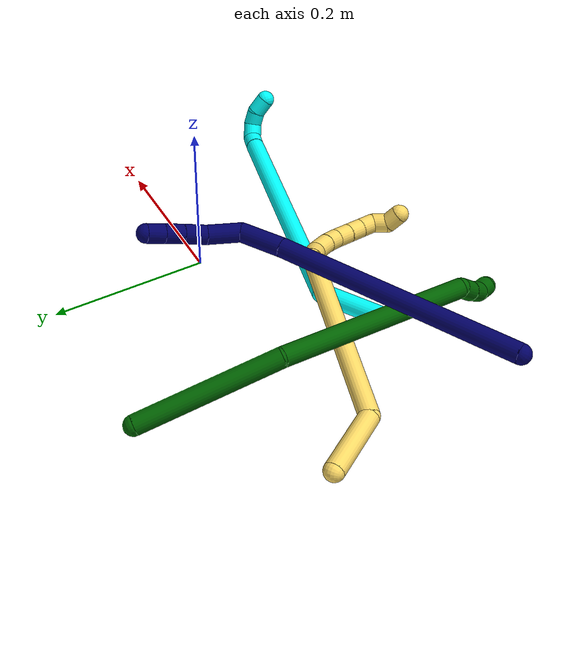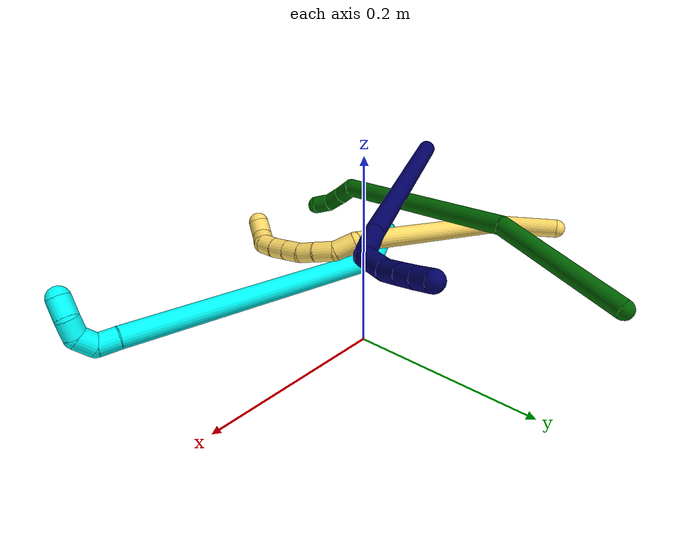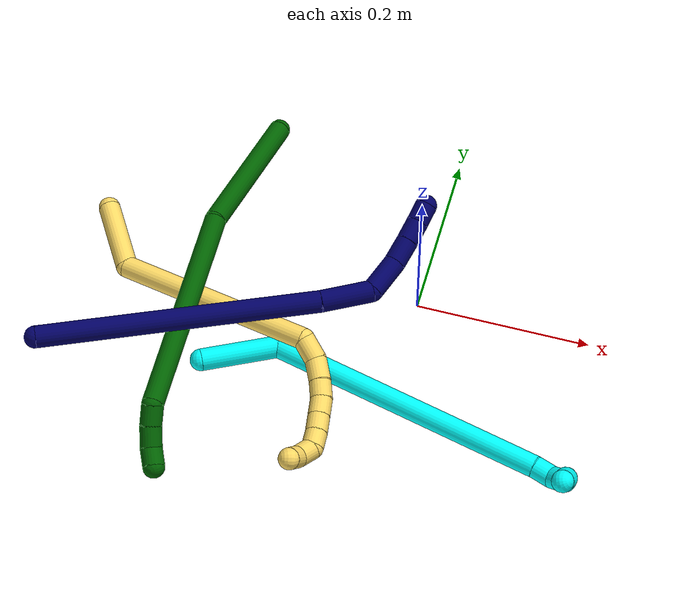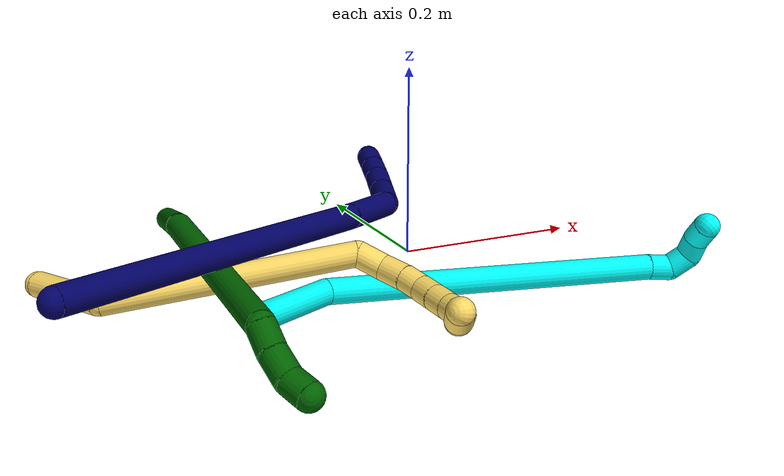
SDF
<sdf version="1.7">
 <world name="default">
  <model name="3">
   <static>0</static>
   <link name="3">
    <collision name="collision-cylinder-e_1_1_4">
     <pose>0.007689 -0.031935 -0.03007 2.32613 0.173532 0.397446</pose>
     <geometry><cylinder><radius>0.0125</radius><length>0.089067</length></cylinder></geometry>
     <surface>
      <friction><ode><mu>1.16</mu><mu2>1.16</mu2><slip1>0</slip1><slip2>0</slip2></ode></friction>
      <contact><ode><kp>1e+06</kp><kd>1</kd><max_vel>0</max_vel><min_depth>0.001</min_depth></ode></contact>
     </surface>
    </collision>
    <visual name="visual-cylinder-e_1_1_4">
     <pose>0.007689 -0.031935 -0.03007 2.32613 0.173532 0.397446</pose>
     <geometry><cylinder><radius>0.0125</radius><length>0.089067</length></cylinder></geometry>
     <material><ambient>0.003922 1 0.996078 1</ambient></material>
    </visual>
    <collision name="collision-cylinder-e_2_4_5">
     <pose>0.112898 -0.088301 -0.186795 2.95105 0.647348 2.58657</pose>
     <geometry><cylinder><radius>0.0125</radius><length>0.323408</length></cylinder></geometry>
     <surface>
      <friction><ode><mu>1.16</mu><mu2>1.16</mu2><slip1>0</slip1><slip2>0</slip2></ode></friction>
      <contact><ode><kp>1e+06</kp><kd>1</kd><max_vel>0</max_vel><min_depth>0.001</min_depth></ode></contact>
     </surface>
    </collision>
    <visual name="visual-cylinder-e_2_4_5">
     <pose>0.112898 -0.088301 -0.186795 2.95105 0.647348 2.58657</pose>
     <geometry><cylinder><radius>0.0125</radius><length>0.323408</length></cylinder></geometry>
     <material><ambient>0.003922 1 0.996078 1</ambient></material>
    </visual>
    <collision name="collision-cylinder-e_3_5_6">
     <pose>0.218166 -0.114174 -0.32156 2.96555 0.754846 2.70352</pose>
     <geometry><cylinder><radius>0.0125</radius><length>0.02262</length></cylinder></geometry>
     <surface>
      <friction><ode><mu>1.16</mu><mu2>1.16</mu2><slip1>0</slip1><slip2>0</slip2></ode></friction>
      <contact><ode><kp>1e+06</kp><kd>1</kd><max_vel>0</max_vel><min_depth>0.001</min_depth></ode></contact>
     </surface>
    </collision>
    <visual name="visual-cylinder-e_3_5_6">
     <pose>0.218166 -0.114174 -0.32156 2.96555 0.754846 2.70352</pose>
     <geometry><cylinder><radius>0.0125</radius><length>0.02262</length></cylinder></geometry>
     <material><ambient>0.003922 1 0.996078 1</ambient></material>
    </visual>
    <collision name="collision-cylinder-e_4_6_7">
     <pose>0.227655 -0.11156 -0.339678 -2.75651 0.159686 -0.778902</pose>
     <geometry><cylinder><radius>0.0125</radius><length>0.021874</length></cylinder></geometry>
     <surface>
      <friction><ode><mu>1.16</mu><mu2>1.16</mu2><slip1>0</slip1><slip2>0</slip2></ode></friction>
      <contact><ode><kp>1e+06</kp><kd>1</kd><max_vel>0</max_vel><min_depth>0.001</min_depth></ode></contact>
     </surface>
    </collision>
    <visual name="visual-cylinder-e_4_6_7">
     <pose>0.227655 -0.11156 -0.339678 -2.75651 0.159686 -0.778902</pose>
     <geometry><cylinder><radius>0.0125</radius><length>0.021874</length></cylinder></geometry>
     <material><ambient>0.003922 1 0.996078 1</ambient></material>
    </visual>
    <collision name="collision-cylinder-e_5_7_8">
     <pose>0.225791 -0.100528 -0.35603 -2.30889 -0.364843 0.79043</pose>
     <geometry><cylinder><radius>0.0125</radius><length>0.020191</length></cylinder></geometry>
     <surface>
      <friction><ode><mu>1.16</mu><mu2>1.16</mu2><slip1>0</slip1><slip2>0</slip2></ode></friction>
      <contact><ode><kp>1e+06</kp><kd>1</kd><max_vel>0</max_vel><min_depth>0.001</min_depth></ode></contact>
     </surface>
    </collision>
    <visual name="visual-cylinder-e_5_7_8">
     <pose>0.225791 -0.100528 -0.35603 -2.30889 -0.364843 0.79043</pose>
     <geometry><cylinder><radius>0.0125</radius><length>0.020191</length></cylinder></geometry>
     <material><ambient>0.003922 1 0.996078 1</ambient></material>
    </visual>
    <collision name="collision-cylinder-e_6_8_2">
     <pose>0.220301 -0.083241 -0.366911 -1.98512 -0.166092 0.253704</pose>
     <geometry><cylinder><radius>0.0125</radius><length>0.022841</length></cylinder></geometry>
     <surface>
      <friction><ode><mu>1.16</mu><mu2>1.16</mu2><slip1>0</slip1><slip2>0</slip2></ode></friction>
      <contact><ode><kp>1e+06</kp><kd>1</kd><max_vel>0</max_vel><min_depth>0.001</min_depth></ode></contact>
     </surface>
    </collision>
    <visual name="visual-cylinder-e_6_8_2">
     <pose>0.220301 -0.083241 -0.366911 -1.98512 -0.166092 0.253704</pose>
     <geometry><cylinder><radius>0.0125</radius><length>0.022841</length></cylinder></geometry>
     <material><ambient>0.003922 1 0.996078 1</ambient></material>
    </visual>
    <collision name="collision-sphere-2">
     <pose>0.218413 -0.07293 -0.371445 0 -0 0</pose>
     <geometry><sphere><radius>0.0125</radius></sphere></geometry>
     <surface>
      <friction><ode><mu>1.16</mu><mu2>1.16</mu2><slip1>0</slip1><slip2>0</slip2></ode></friction>
      <contact><ode><kp>1e+06</kp><kd>1</kd><max_vel>0</max_vel><min_depth>0.001</min_depth></ode></contact>
     </surface>
    </collision>
    <visual name="visual-sphere-2">
     <pose>0.218413 -0.07293 -0.371445 0 -0 0</pose>
     <geometry><sphere><radius>0.0125</radius></sphere></geometry>
     <material><ambient>0.003922 1 0.996078 1</ambient></material>
    </visual>
    <collision name="collision-sphere-4">
     <pose>0.015378 -0.063871 -0.060141 0 -0 0</pose>
     <geometry><sphere><radius>0.0125</radius></sphere></geometry>
     <surface>
      <friction><ode><mu>1.16</mu><mu2>1.16</mu2><slip1>0</slip1><slip2>0</slip2></ode></friction>
      <contact><ode><kp>1e+06</kp><kd>1</kd><max_vel>0</max_vel><min_depth>0.001</min_depth></ode></contact>
     </surface>
    </collision>
    <visual name="visual-sphere-4">
     <pose>0.015378 -0.063871 -0.060141 0 -0 0</pose>
     <geometry><sphere><radius>0.0125</radius></sphere></geometry>
     <material><ambient>0.003922 1 0.996078 1</ambient></material>
    </visual>
    <collision name="collision-sphere-1">
     <geometry><sphere><radius>0.0125</radius></sphere></geometry>
     <surface>
      <friction><ode><mu>1.16</mu><mu2>1.16</mu2><slip1>0</slip1><slip2>0</slip2></ode></friction>
      <contact><ode><kp>1e+06</kp><kd>1</kd><max_vel>0</max_vel><min_depth>0.001</min_depth></ode></contact>
     </surface>
    </collision>
    <visual name="visual-sphere-1">
     <geometry><sphere><radius>0.0125</radius></sphere></geometry>
     <material><ambient>0.003922 1 0.996078 1</ambient></material>
    </visual>
    <collision name="collision-sphere-8">
     <pose>0.222189 -0.093551 -0.362376 0 -0 0</pose>
     <geometry><sphere><radius>0.0125</radius></sphere></geometry>
     <surface>
      <friction><ode><mu>1.16</mu><mu2>1.16</mu2><slip1>0</slip1><slip2>0</slip2></ode></friction>
      <contact><ode><kp>1e+06</kp><kd>1</kd><max_vel>0</max_vel><min_depth>0.001</min_depth></ode></contact>
     </surface>
    </collision>
    <visual name="visual-sphere-8">
     <pose>0.222189 -0.093551 -0.362376 0 -0 0</pose>
     <geometry><sphere><radius>0.0125</radius></sphere></geometry>
     <material><ambient>0.003922 1 0.996078 1</ambient></material>
    </visual>
    <collision name="collision-sphere-5">
     <pose>0.210417 -0.112731 -0.313449 0 -0 0</pose>
     <geometry><sphere><radius>0.0125</radius></sphere></geometry>
     <surface>
      <friction><ode><mu>1.16</mu><mu2>1.16</mu2><slip1>0</slip1><slip2>0</slip2></ode></friction>
      <contact><ode><kp>1e+06</kp><kd>1</kd><max_vel>0</max_vel><min_depth>0.001</min_depth></ode></contact>
     </surface>
    </collision>
    <visual name="visual-sphere-5">
     <pose>0.210417 -0.112731 -0.313449 0 -0 0</pose>
     <geometry><sphere><radius>0.0125</radius></sphere></geometry>
     <material><ambient>0.003922 1 0.996078 1</ambient></material>
    </visual>
    <collision name="collision-sphere-6">
     <pose>0.225916 -0.115616 -0.329671 0 -0 0</pose>
     <geometry><sphere><radius>0.0125</radius></sphere></geometry>
     <surface>
      <friction><ode><mu>1.16</mu><mu2>1.16</mu2><slip1>0</slip1><slip2>0</slip2></ode></friction>
      <contact><ode><kp>1e+06</kp><kd>1</kd><max_vel>0</max_vel><min_depth>0.001</min_depth></ode></contact>
     </surface>
    </collision>
    <visual name="visual-sphere-6">
     <pose>0.225916 -0.115616 -0.329671 0 -0 0</pose>
     <geometry><sphere><radius>0.0125</radius></sphere></geometry>
     <material><ambient>0.003922 1 0.996078 1</ambient></material>
    </visual>
    <collision name="collision-sphere-7">
     <pose>0.229394 -0.107504 -0.349685 0 -0 0</pose>
     <geometry><sphere><radius>0.0125</radius></sphere></geometry>
     <surface>
      <friction><ode><mu>1.16</mu><mu2>1.16</mu2><slip1>0</slip1><slip2>0</slip2></ode></friction>
      <contact><ode><kp>1e+06</kp><kd>1</kd><max_vel>0</max_vel><min_depth>0.001</min_depth></ode></contact>
     </surface>
    </collision>
    <visual name="visual-sphere-7">
     <pose>0.229394 -0.107504 -0.349685 0 -0 0</pose>
     <geometry><sphere><radius>0.0125</radius></sphere></geometry>
     <material><ambient>0.003922 1 0.996078 1</ambient></material>
    </visual>
    <inertial>
     <pose>0.113404 -0.080711 -0.186724 0 -0 0</pose>
     <mass>0.5</mass>
     <inertia>
      <ixx>-0.000628</ixx>
      <ixy>0</ixy>
      <ixz>0</ixz>
      <iyy>0.003706</iyy>
      <iyz>0</iyz>
      <izz>-0.001279</izz>
     </inertia>
    </inertial>
   </link>
   <pose>-0.214287 -0.144157 0.01554 2.47558 0.707245 -0.883482</pose>
  </model>
  <model name="5">
   <static>0</static>
   <link name="5">
    <collision name="collision-cylinder-e_1_1_4">
     <pose>0.031659 -0.028203 -0.006794 1.80721 0.829047 1.01887</pose>
     <geometry><cylinder><radius>0.0125</radius><length>0.085881</length></cylinder></geometry>
     <surface>
      <friction><ode><mu>1.16</mu><mu2>1.16</mu2><slip1>0</slip1><slip2>0</slip2></ode></friction>
      <contact><ode><kp>1e+06</kp><kd>1</kd><max_vel>0</max_vel><min_depth>0.001</min_depth></ode></contact>
     </surface>
    </collision>
    <visual name="visual-cylinder-e_1_1_4">
     <pose>0.031659 -0.028203 -0.006794 1.80721 0.829047 1.01887</pose>
     <geometry><cylinder><radius>0.0125</radius><length>0.085881</length></cylinder></geometry>
     <material><ambient>1 0.858824 0.4 1</ambient></material>
    </visual>
    <collision name="collision-cylinder-e_2_4_5">
     <pose>0.139608 -0.079029 -0.102065 2.89126 0.695947 2.4738</pose>
     <geometry><cylinder><radius>0.0125</radius><length>0.23799</length></cylinder></geometry>
     <surface>
      <friction><ode><mu>1.16</mu><mu2>1.16</mu2><slip1>0</slip1><slip2>0</slip2></ode></friction>
      <contact><ode><kp>1e+06</kp><kd>1</kd><max_vel>0</max_vel><min_depth>0.001</min_depth></ode></contact>
     </surface>
    </collision>
    <visual name="visual-cylinder-e_2_4_5">
     <pose>0.139608 -0.079029 -0.102065 2.89126 0.695947 2.4738</pose>
     <geometry><cylinder><radius>0.0125</radius><length>0.23799</length></cylinder></geometry>
     <material><ambient>1 0.858824 0.4 1</ambient></material>
    </visual>
    <collision name="collision-cylinder-e_3_5_6">
     <pose>0.221064 -0.112373 -0.197268 2.13117 0.387562 0.681914</pose>
     <geometry><cylinder><radius>0.0125</radius><length>0.027341</length></cylinder></geometry>
     <surface>
      <friction><ode><mu>1.16</mu><mu2>1.16</mu2><slip1>0</slip1><slip2>0</slip2></ode></friction>
      <contact><ode><kp>1e+06</kp><kd>1</kd><max_vel>0</max_vel><min_depth>0.001</min_depth></ode></contact>
     </surface>
    </collision>
    <visual name="visual-cylinder-e_3_5_6">
     <pose>0.221064 -0.112373 -0.197268 2.13117 0.387562 0.681914</pose>
     <geometry><cylinder><radius>0.0125</radius><length>0.027341</length></cylinder></geometry>
     <material><ambient>1 0.858824 0.4 1</ambient></material>
    </visual>
    <collision name="collision-cylinder-e_4_6_7">
     <pose>0.234071 -0.133459 -0.205429 1.70827 0.643072 0.730399</pose>
     <geometry><cylinder><radius>0.0125</radius><length>0.026151</length></cylinder></geometry>
     <surface>
      <friction><ode><mu>1.16</mu><mu2>1.16</mu2><slip1>0</slip1><slip2>0</slip2></ode></friction>
      <contact><ode><kp>1e+06</kp><kd>1</kd><max_vel>0</max_vel><min_depth>0.001</min_depth></ode></contact>
     </surface>
    </collision>
    <visual name="visual-cylinder-e_4_6_7">
     <pose>0.234071 -0.133459 -0.205429 1.70827 0.643072 0.730399</pose>
     <geometry><cylinder><radius>0.0125</radius><length>0.026151</length></cylinder></geometry>
     <material><ambient>1 0.858824 0.4 1</ambient></material>
    </visual>
    <collision name="collision-cylinder-e_5_7_8">
     <pose>0.247444 -0.152476 -0.20705 1.59245 0.568774 0.580546</pose>
     <geometry><cylinder><radius>0.0125</radius><length>0.020542</length></cylinder></geometry>
     <surface>
      <friction><ode><mu>1.16</mu><mu2>1.16</mu2><slip1>0</slip1><slip2>0</slip2></ode></friction>
      <contact><ode><kp>1e+06</kp><kd>1</kd><max_vel>0</max_vel><min_depth>0.001</min_depth></ode></contact>
     </surface>
    </collision>
    <visual name="visual-cylinder-e_5_7_8">
     <pose>0.247444 -0.152476 -0.20705 1.59245 0.568774 0.580546</pose>
     <geometry><cylinder><radius>0.0125</radius><length>0.020542</length></cylinder></geometry>
     <material><ambient>1 0.858824 0.4 1</ambient></material>
    </visual>
    <collision name="collision-cylinder-e_6_8_9">
     <pose>0.259383 -0.169385 -0.204881 1.29278 0.641032 0.490846</pose>
     <geometry><cylinder><radius>0.0125</radius><length>0.021427</length></cylinder></geometry>
     <surface>
      <friction><ode><mu>1.16</mu><mu2>1.16</mu2><slip1>0</slip1><slip2>0</slip2></ode></friction>
      <contact><ode><kp>1e+06</kp><kd>1</kd><max_vel>0</max_vel><min_depth>0.001</min_depth></ode></contact>
     </surface>
    </collision>
    <visual name="visual-cylinder-e_6_8_9">
     <pose>0.259383 -0.169385 -0.204881 1.29278 0.641032 0.490846</pose>
     <geometry><cylinder><radius>0.0125</radius><length>0.021427</length></cylinder></geometry>
     <material><ambient>1 0.858824 0.4 1</ambient></material>
    </visual>
    <collision name="collision-cylinder-e_7_9_10">
     <pose>0.271949 -0.185586 -0.200256 1.29267 0.640659 0.4905</pose>
     <geometry><cylinder><radius>0.0125</radius><length>0.020609</length></cylinder></geometry>
     <surface>
      <friction><ode><mu>1.16</mu><mu2>1.16</mu2><slip1>0</slip1><slip2>0</slip2></ode></friction>
      <contact><ode><kp>1e+06</kp><kd>1</kd><max_vel>0</max_vel><min_depth>0.001</min_depth></ode></contact>
     </surface>
    </collision>
    <visual name="visual-cylinder-e_7_9_10">
     <pose>0.271949 -0.185586 -0.200256 1.29267 0.640659 0.4905</pose>
     <geometry><cylinder><radius>0.0125</radius><length>0.020609</length></cylinder></geometry>
     <material><ambient>1 0.858824 0.4 1</ambient></material>
    </visual>
    <collision name="collision-cylinder-e_8_10_11">
     <pose>0.284412 -0.200597 -0.194765 1.14296 0.68168 0.448492</pose>
     <geometry><cylinder><radius>0.0125</radius><length>0.020008</length></cylinder></geometry>
     <surface>
      <friction><ode><mu>1.16</mu><mu2>1.16</mu2><slip1>0</slip1><slip2>0</slip2></ode></friction>
      <contact><ode><kp>1e+06</kp><kd>1</kd><max_vel>0</max_vel><min_depth>0.001</min_depth></ode></contact>
     </surface>
    </collision>
    <visual name="visual-cylinder-e_8_10_11">
     <pose>0.284412 -0.200597 -0.194765 1.14296 0.68168 0.448492</pose>
     <geometry><cylinder><radius>0.0125</radius><length>0.020008</length></cylinder></geometry>
     <material><ambient>1 0.858824 0.4 1</ambient></material>
    </visual>
    <collision name="collision-cylinder-e_9_11_12">
     <pose>0.293834 -0.21184 -0.182994 0.454351 0.316844 0.073829</pose>
     <geometry><cylinder><radius>0.0125</radius><length>0.020022</length></cylinder></geometry>
     <surface>
      <friction><ode><mu>1.16</mu><mu2>1.16</mu2><slip1>0</slip1><slip2>0</slip2></ode></friction>
      <contact><ode><kp>1e+06</kp><kd>1</kd><max_vel>0</max_vel><min_depth>0.001</min_depth></ode></contact>
     </surface>
    </collision>
    <visual name="visual-cylinder-e_9_11_12">
     <pose>0.293834 -0.21184 -0.182994 0.454351 0.316844 0.073829</pose>
     <geometry><cylinder><radius>0.0125</radius><length>0.020022</length></cylinder></geometry>
     <material><ambient>1 0.858824 0.4 1</ambient></material>
    </visual>
    <collision name="collision-cylinder-e_10_12_2">
     <pose>0.304467 -0.21522 -0.167873 -0.120362 0.848436 -0.054413</pose>
     <geometry><cylinder><radius>0.0125</radius><length>0.020029</length></cylinder></geometry>
     <surface>
      <friction><ode><mu>1.16</mu><mu2>1.16</mu2><slip1>0</slip1><slip2>0</slip2></ode></friction>
      <contact><ode><kp>1e+06</kp><kd>1</kd><max_vel>0</max_vel><min_depth>0.001</min_depth></ode></contact>
     </surface>
    </collision>
    <visual name="visual-cylinder-e_10_12_2">
     <pose>0.304467 -0.21522 -0.167873 -0.120362 0.848436 -0.054413</pose>
     <geometry><cylinder><radius>0.0125</radius><length>0.020029</length></cylinder></geometry>
     <material><ambient>1 0.858824 0.4 1</ambient></material>
    </visual>
    <collision name="collision-sphere-2">
     <pose>0.31198 -0.214425 -0.1613 0 -0 0</pose>
     <geometry><sphere><radius>0.0125</radius></sphere></geometry>
     <surface>
      <friction><ode><mu>1.16</mu><mu2>1.16</mu2><slip1>0</slip1><slip2>0</slip2></ode></friction>
      <contact><ode><kp>1e+06</kp><kd>1</kd><max_vel>0</max_vel><min_depth>0.001</min_depth></ode></contact>
     </surface>
    </collision>
    <visual name="visual-sphere-2">
     <pose>0.31198 -0.214425 -0.1613 0 -0 0</pose>
     <geometry><sphere><radius>0.0125</radius></sphere></geometry>
     <material><ambient>1 0.858824 0.4 1</ambient></material>
    </visual>
    <collision name="collision-sphere-12">
     <pose>0.296953 -0.216015 -0.174447 0 -0 0</pose>
     <geometry><sphere><radius>0.0125</radius></sphere></geometry>
     <surface>
      <friction><ode><mu>1.16</mu><mu2>1.16</mu2><slip1>0</slip1><slip2>0</slip2></ode></friction>
      <contact><ode><kp>1e+06</kp><kd>1</kd><max_vel>0</max_vel><min_depth>0.001</min_depth></ode></contact>
     </surface>
    </collision>
    <visual name="visual-sphere-12">
     <pose>0.296953 -0.216015 -0.174447 0 -0 0</pose>
     <geometry><sphere><radius>0.0125</radius></sphere></geometry>
     <material><ambient>1 0.858824 0.4 1</ambient></material>
    </visual>
    <collision name="collision-sphere-11">
     <pose>0.290715 -0.207665 -0.191542 0 -0 0</pose>
     <geometry><sphere><radius>0.0125</radius></sphere></geometry>
     <surface>
      <friction><ode><mu>1.16</mu><mu2>1.16</mu2><slip1>0</slip1><slip2>0</slip2></ode></friction>
      <contact><ode><kp>1e+06</kp><kd>1</kd><max_vel>0</max_vel><min_depth>0.001</min_depth></ode></contact>
     </surface>
    </collision>
    <visual name="visual-sphere-11">
     <pose>0.290715 -0.207665 -0.191542 0 -0 0</pose>
     <geometry><sphere><radius>0.0125</radius></sphere></geometry>
     <material><ambient>1 0.858824 0.4 1</ambient></material>
    </visual>
    <collision name="collision-sphere-10">
     <pose>0.278108 -0.193529 -0.197988 0 -0 0</pose>
     <geometry><sphere><radius>0.0125</radius></sphere></geometry>
     <surface>
      <friction><ode><mu>1.16</mu><mu2>1.16</mu2><slip1>0</slip1><slip2>0</slip2></ode></friction>
      <contact><ode><kp>1e+06</kp><kd>1</kd><max_vel>0</max_vel><min_depth>0.001</min_depth></ode></contact>
     </surface>
    </collision>
    <visual name="visual-sphere-10">
     <pose>0.278108 -0.193529 -0.197988 0 -0 0</pose>
     <geometry><sphere><radius>0.0125</radius></sphere></geometry>
     <material><ambient>1 0.858824 0.4 1</ambient></material>
    </visual>
    <collision name="collision-sphere-9">
     <pose>0.26579 -0.177642 -0.202524 0 -0 0</pose>
     <geometry><sphere><radius>0.0125</radius></sphere></geometry>
     <surface>
      <friction><ode><mu>1.16</mu><mu2>1.16</mu2><slip1>0</slip1><slip2>0</slip2></ode></friction>
      <contact><ode><kp>1e+06</kp><kd>1</kd><max_vel>0</max_vel><min_depth>0.001</min_depth></ode></contact>
     </surface>
    </collision>
    <visual name="visual-sphere-9">
     <pose>0.26579 -0.177642 -0.202524 0 -0 0</pose>
     <geometry><sphere><radius>0.0125</radius></sphere></geometry>
     <material><ambient>1 0.858824 0.4 1</ambient></material>
    </visual>
    <collision name="collision-sphere-4">
     <pose>0.063319 -0.056405 -0.013589 0 -0 0</pose>
     <geometry><sphere><radius>0.0125</radius></sphere></geometry>
     <surface>
      <friction><ode><mu>1.16</mu><mu2>1.16</mu2><slip1>0</slip1><slip2>0</slip2></ode></friction>
      <contact><ode><kp>1e+06</kp><kd>1</kd><max_vel>0</max_vel><min_depth>0.001</min_depth></ode></contact>
     </surface>
    </collision>
    <visual name="visual-sphere-4">
     <pose>0.063319 -0.056405 -0.013589 0 -0 0</pose>
     <geometry><sphere><radius>0.0125</radius></sphere></geometry>
     <material><ambient>1 0.858824 0.4 1</ambient></material>
    </visual>
    <collision name="collision-sphere-1">
     <geometry><sphere><radius>0.0125</radius></sphere></geometry>
     <surface>
      <friction><ode><mu>1.16</mu><mu2>1.16</mu2><slip1>0</slip1><slip2>0</slip2></ode></friction>
      <contact><ode><kp>1e+06</kp><kd>1</kd><max_vel>0</max_vel><min_depth>0.001</min_depth></ode></contact>
     </surface>
    </collision>
    <visual name="visual-sphere-1">
     <geometry><sphere><radius>0.0125</radius></sphere></geometry>
     <material><ambient>1 0.858824 0.4 1</ambient></material>
    </visual>
    <collision name="collision-sphere-8">
     <pose>0.252976 -0.161128 -0.207237 0 -0 0</pose>
     <geometry><sphere><radius>0.0125</radius></sphere></geometry>
     <surface>
      <friction><ode><mu>1.16</mu><mu2>1.16</mu2><slip1>0</slip1><slip2>0</slip2></ode></friction>
      <contact><ode><kp>1e+06</kp><kd>1</kd><max_vel>0</max_vel><min_depth>0.001</min_depth></ode></contact>
     </surface>
    </collision>
    <visual name="visual-sphere-8">
     <pose>0.252976 -0.161128 -0.207237 0 -0 0</pose>
     <geometry><sphere><radius>0.0125</radius></sphere></geometry>
     <material><ambient>1 0.858824 0.4 1</ambient></material>
    </visual>
    <collision name="collision-sphere-5">
     <pose>0.215897 -0.101652 -0.190541 0 -0 0</pose>
     <geometry><sphere><radius>0.0125</radius></sphere></geometry>
     <surface>
      <friction><ode><mu>1.16</mu><mu2>1.16</mu2><slip1>0</slip1><slip2>0</slip2></ode></friction>
      <contact><ode><kp>1e+06</kp><kd>1</kd><max_vel>0</max_vel><min_depth>0.001</min_depth></ode></contact>
     </surface>
    </collision>
    <visual name="visual-sphere-5">
     <pose>0.215897 -0.101652 -0.190541 0 -0 0</pose>
     <geometry><sphere><radius>0.0125</radius></sphere></geometry>
     <material><ambient>1 0.858824 0.4 1</ambient></material>
    </visual>
    <collision name="collision-sphere-6">
     <pose>0.22623 -0.123094 -0.203995 0 -0 0</pose>
     <geometry><sphere><radius>0.0125</radius></sphere></geometry>
     <surface>
      <friction><ode><mu>1.16</mu><mu2>1.16</mu2><slip1>0</slip1><slip2>0</slip2></ode></friction>
      <contact><ode><kp>1e+06</kp><kd>1</kd><max_vel>0</max_vel><min_depth>0.001</min_depth></ode></contact>
     </surface>
    </collision>
    <visual name="visual-sphere-6">
     <pose>0.22623 -0.123094 -0.203995 0 -0 0</pose>
     <geometry><sphere><radius>0.0125</radius></sphere></geometry>
     <material><ambient>1 0.858824 0.4 1</ambient></material>
    </visual>
    <collision name="collision-sphere-7">
     <pose>0.241912 -0.143824 -0.206863 0 -0 0</pose>
     <geometry><sphere><radius>0.0125</radius></sphere></geometry>
     <surface>
      <friction><ode><mu>1.16</mu><mu2>1.16</mu2><slip1>0</slip1><slip2>0</slip2></ode></friction>
      <contact><ode><kp>1e+06</kp><kd>1</kd><max_vel>0</max_vel><min_depth>0.001</min_depth></ode></contact>
     </surface>
    </collision>
    <visual name="visual-sphere-7">
     <pose>0.241912 -0.143824 -0.206863 0 -0 0</pose>
     <geometry><sphere><radius>0.0125</radius></sphere></geometry>
     <material><ambient>1 0.858824 0.4 1</ambient></material>
    </visual>
    <inertial>
     <pose>0.164054 -0.101889 -0.118666 0 -0 0</pose>
     <mass>0.5</mass>
     <inertia>
      <ixx>-5.2e-05</ixx>
      <ixy>0</ixy>
      <ixz>0</ixz>
      <iyy>0.001565</iyy>
      <iyz>0</iyz>
      <izz>-0.000526</izz>
     </inertia>
    </inertial>
   </link>
   <pose>-0.377954 0.02885 0.012289 1.25867 -0.748628 -0.973288</pose>
  </model>
  <model name="6">
   <static>0</static>
   <link name="6">
    <collision name="collision-cylinder-e_1_1_4">
     <pose>-0.005927 -0.021441 0.08753 0.24023 -0.065679 -0.00793</pose>
     <geometry><cylinder><radius>0.0125</radius><length>0.180626</length></cylinder></geometry>
     <surface>
      <friction><ode><mu>1.16</mu><mu2>1.16</mu2><slip1>0</slip1><slip2>0</slip2></ode></friction>
      <contact><ode><kp>1e+06</kp><kd>1</kd><max_vel>0</max_vel><min_depth>0.001</min_depth></ode></contact>
     </surface>
    </collision>
    <visual name="visual-cylinder-e_1_1_4">
     <pose>-0.005927 -0.021441 0.08753 0.24023 -0.065679 -0.00793</pose>
     <geometry><cylinder><radius>0.0125</radius><length>0.180626</length></cylinder></geometry>
     <material><ambient>0 0.392157 0.003922 1</ambient></material>
    </visual>
    <collision name="collision-cylinder-e_2_4_5">
     <pose>-0.023142 -0.108717 0.279942 0.560542 -0.090899 -0.026182</pose>
     <geometry><cylinder><radius>0.0125</radius><length>0.248688</length></cylinder></geometry>
     <surface>
      <friction><ode><mu>1.16</mu><mu2>1.16</mu2><slip1>0</slip1><slip2>0</slip2></ode></friction>
      <contact><ode><kp>1e+06</kp><kd>1</kd><max_vel>0</max_vel><min_depth>0.001</min_depth></ode></contact>
     </surface>
    </collision>
    <visual name="visual-cylinder-e_2_4_5">
     <pose>-0.023142 -0.108717 0.279942 0.560542 -0.090899 -0.026182</pose>
     <geometry><cylinder><radius>0.0125</radius><length>0.248688</length></cylinder></geometry>
     <material><ambient>0 0.392157 0.003922 1</ambient></material>
    </visual>
    <collision name="collision-cylinder-e_3_5_6">
     <pose>-0.038199 -0.185119 0.38884 1.20746 -0.321848 -0.222963</pose>
     <geometry><cylinder><radius>0.0125</radius><length>0.023835</length></cylinder></geometry>
     <surface>
      <friction><ode><mu>1.16</mu><mu2>1.16</mu2><slip1>0</slip1><slip2>0</slip2></ode></friction>
      <contact><ode><kp>1e+06</kp><kd>1</kd><max_vel>0</max_vel><min_depth>0.001</min_depth></ode></contact>
     </surface>
    </collision>
    <visual name="visual-cylinder-e_3_5_6">
     <pose>-0.038199 -0.185119 0.38884 1.20746 -0.321848 -0.222963</pose>
     <geometry><cylinder><radius>0.0125</radius><length>0.023835</length></cylinder></geometry>
     <material><ambient>0 0.392157 0.003922 1</ambient></material>
    </visual>
    <collision name="collision-cylinder-e_4_6_7">
     <pose>-0.044347 -0.207215 0.397196 1.21094 -0.190752 -0.132247</pose>
     <geometry><cylinder><radius>0.0125</radius><length>0.02509</length></cylinder></geometry>
     <surface>
      <friction><ode><mu>1.16</mu><mu2>1.16</mu2><slip1>0</slip1><slip2>0</slip2></ode></friction>
      <contact><ode><kp>1e+06</kp><kd>1</kd><max_vel>0</max_vel><min_depth>0.001</min_depth></ode></contact>
     </surface>
    </collision>
    <visual name="visual-cylinder-e_4_6_7">
     <pose>-0.044347 -0.207215 0.397196 1.21094 -0.190752 -0.132247</pose>
     <geometry><cylinder><radius>0.0125</radius><length>0.02509</length></cylinder></geometry>
     <material><ambient>0 0.392157 0.003922 1</ambient></material>
    </visual>
    <collision name="collision-cylinder-e_5_7_2">
     <pose>-0.045584 -0.2279 0.407297 1.00897 0.105114 0.058075</pose>
     <geometry><cylinder><radius>0.0125</radius><length>0.02176</length></cylinder></geometry>
     <surface>
      <friction><ode><mu>1.16</mu><mu2>1.16</mu2><slip1>0</slip1><slip2>0</slip2></ode></friction>
      <contact><ode><kp>1e+06</kp><kd>1</kd><max_vel>0</max_vel><min_depth>0.001</min_depth></ode></contact>
     </surface>
    </collision>
    <visual name="visual-cylinder-e_5_7_2">
     <pose>-0.045584 -0.2279 0.407297 1.00897 0.105114 0.058075</pose>
     <geometry><cylinder><radius>0.0125</radius><length>0.02176</length></cylinder></geometry>
     <material><ambient>0 0.392157 0.003922 1</ambient></material>
    </visual>
    <collision name="collision-sphere-2">
     <pose>-0.044443 -0.237057 0.413062 0 -0 0</pose>
     <geometry><sphere><radius>0.0125</radius></sphere></geometry>
     <surface>
      <friction><ode><mu>1.16</mu><mu2>1.16</mu2><slip1>0</slip1><slip2>0</slip2></ode></friction>
      <contact><ode><kp>1e+06</kp><kd>1</kd><max_vel>0</max_vel><min_depth>0.001</min_depth></ode></contact>
     </surface>
    </collision>
    <visual name="visual-sphere-2">
     <pose>-0.044443 -0.237057 0.413062 0 -0 0</pose>
     <geometry><sphere><radius>0.0125</radius></sphere></geometry>
     <material><ambient>0 0.392157 0.003922 1</ambient></material>
    </visual>
    <collision name="collision-sphere-7">
     <pose>-0.046726 -0.218744 0.401533 0 -0 0</pose>
     <geometry><sphere><radius>0.0125</radius></sphere></geometry>
     <surface>
      <friction><ode><mu>1.16</mu><mu2>1.16</mu2><slip1>0</slip1><slip2>0</slip2></ode></friction>
      <contact><ode><kp>1e+06</kp><kd>1</kd><max_vel>0</max_vel><min_depth>0.001</min_depth></ode></contact>
     </surface>
    </collision>
    <visual name="visual-sphere-7">
     <pose>-0.046726 -0.218744 0.401533 0 -0 0</pose>
     <geometry><sphere><radius>0.0125</radius></sphere></geometry>
     <material><ambient>0 0.392157 0.003922 1</ambient></material>
    </visual>
    <collision name="collision-sphere-6">
     <pose>-0.041969 -0.195686 0.392858 0 -0 0</pose>
     <geometry><sphere><radius>0.0125</radius></sphere></geometry>
     <surface>
      <friction><ode><mu>1.16</mu><mu2>1.16</mu2><slip1>0</slip1><slip2>0</slip2></ode></friction>
      <contact><ode><kp>1e+06</kp><kd>1</kd><max_vel>0</max_vel><min_depth>0.001</min_depth></ode></contact>
     </surface>
    </collision>
    <visual name="visual-sphere-6">
     <pose>-0.041969 -0.195686 0.392858 0 -0 0</pose>
     <geometry><sphere><radius>0.0125</radius></sphere></geometry>
     <material><ambient>0 0.392157 0.003922 1</ambient></material>
    </visual>
    <collision name="collision-sphere-5">
     <pose>-0.034429 -0.174551 0.384822 0 -0 0</pose>
     <geometry><sphere><radius>0.0125</radius></sphere></geometry>
     <surface>
      <friction><ode><mu>1.16</mu><mu2>1.16</mu2><slip1>0</slip1><slip2>0</slip2></ode></friction>
      <contact><ode><kp>1e+06</kp><kd>1</kd><max_vel>0</max_vel><min_depth>0.001</min_depth></ode></contact>
     </surface>
    </collision>
    <visual name="visual-sphere-5">
     <pose>-0.034429 -0.174551 0.384822 0 -0 0</pose>
     <geometry><sphere><radius>0.0125</radius></sphere></geometry>
     <material><ambient>0 0.392157 0.003922 1</ambient></material>
    </visual>
    <collision name="collision-sphere-1">
     <geometry><sphere><radius>0.0125</radius></sphere></geometry>
     <surface>
      <friction><ode><mu>1.16</mu><mu2>1.16</mu2><slip1>0</slip1><slip2>0</slip2></ode></friction>
      <contact><ode><kp>1e+06</kp><kd>1</kd><max_vel>0</max_vel><min_depth>0.001</min_depth></ode></contact>
     </surface>
    </collision>
    <visual name="visual-sphere-1">
     <geometry><sphere><radius>0.0125</radius></sphere></geometry>
     <material><ambient>0 0.392157 0.003922 1</ambient></material>
    </visual>
    <collision name="collision-sphere-4">
     <pose>-0.011855 -0.042883 0.175061 0 -0 0</pose>
     <geometry><sphere><radius>0.0125</radius></sphere></geometry>
     <surface>
      <friction><ode><mu>1.16</mu><mu2>1.16</mu2><slip1>0</slip1><slip2>0</slip2></ode></friction>
      <contact><ode><kp>1e+06</kp><kd>1</kd><max_vel>0</max_vel><min_depth>0.001</min_depth></ode></contact>
     </surface>
    </collision>
    <visual name="visual-sphere-4">
     <pose>-0.011855 -0.042883 0.175061 0 -0 0</pose>
     <geometry><sphere><radius>0.0125</radius></sphere></geometry>
     <material><ambient>0 0.392157 0.003922 1</ambient></material>
    </visual>
    <inertial>
     <pose>-0.019682 -0.09096 0.22705 0 -0 0</pose>
     <mass>0.5</mass>
     <inertia>
      <ixx>0.001747</ixx>
      <ixy>0</ixy>
      <ixz>0</ixz>
      <iyy>0.001525</iyy>
      <iyz>0</iyz>
      <izz>0.00099</izz>
     </inertia>
    </inertial>
   </link>
   <pose>-0.218202 0.189772 0.012416 0.990973 -0.572197 0.096376</pose>
  </model>
  <model name="7">
   <static>0</static>
   <link name="7">
    <collision name="collision-cylinder-e_1_1_4">
     <pose>0.143205 0.04033 0.057825 -0.609008 1.11333 -0.386282</pose>
     <geometry><cylinder><radius>0.0125</radius><length>0.319236</length></cylinder></geometry>
     <surface>
      <friction><ode><mu>1.16</mu><mu2>1.16</mu2><slip1>0</slip1><slip2>0</slip2></ode></friction>
      <contact><ode><kp>1e+06</kp><kd>1</kd><max_vel>0</max_vel><min_depth>0.001</min_depth></ode></contact>
     </surface>
    </collision>
    <visual name="visual-cylinder-e_1_1_4">
     <pose>0.143205 0.04033 0.057825 -0.609008 1.11333 -0.386282</pose>
     <geometry><cylinder><radius>0.0125</radius><length>0.319236</length></cylinder></geometry>
     <material><ambient>0.003922 0 0.403922 1</ambient></material>
    </visual>
    <collision name="collision-cylinder-e_2_4_5">
     <pose>0.311896 0.089731 0.12795 -0.635465 1.03063 -0.368302</pose>
     <geometry><cylinder><radius>0.0125</radius><length>0.059434</length></cylinder></geometry>
     <surface>
      <friction><ode><mu>1.16</mu><mu2>1.16</mu2><slip1>0</slip1><slip2>0</slip2></ode></friction>
      <contact><ode><kp>1e+06</kp><kd>1</kd><max_vel>0</max_vel><min_depth>0.001</min_depth></ode></contact>
     </surface>
    </collision>
    <visual name="visual-cylinder-e_2_4_5">
     <pose>0.311896 0.089731 0.12795 -0.635465 1.03063 -0.368302</pose>
     <geometry><cylinder><radius>0.0125</radius><length>0.059434</length></cylinder></geometry>
     <material><ambient>0.003922 0 0.403922 1</ambient></material>
    </visual>
    <collision name="collision-cylinder-e_3_5_6">
     <pose>0.344332 0.112857 0.155753 -0.736439 0.320667 -0.124628</pose>
     <geometry><cylinder><radius>0.0125</radius><length>0.044102</length></cylinder></geometry>
     <surface>
      <friction><ode><mu>1.16</mu><mu2>1.16</mu2><slip1>0</slip1><slip2>0</slip2></ode></friction>
      <contact><ode><kp>1e+06</kp><kd>1</kd><max_vel>0</max_vel><min_depth>0.001</min_depth></ode></contact>
     </surface>
    </collision>
    <visual name="visual-cylinder-e_3_5_6">
     <pose>0.344332 0.112857 0.155753 -0.736439 0.320667 -0.124628</pose>
     <geometry><cylinder><radius>0.0125</radius><length>0.044102</length></cylinder></geometry>
     <material><ambient>0.003922 0 0.403922 1</ambient></material>
    </visual>
    <collision name="collision-cylinder-e_4_6_7">
     <pose>0.354324 0.134278 0.183488 -0.542047 0.209872 -0.058513</pose>
     <geometry><cylinder><radius>0.0125</radius><length>0.029195</length></cylinder></geometry>
     <surface>
      <friction><ode><mu>1.16</mu><mu2>1.16</mu2><slip1>0</slip1><slip2>0</slip2></ode></friction>
      <contact><ode><kp>1e+06</kp><kd>1</kd><max_vel>0</max_vel><min_depth>0.001</min_depth></ode></contact>
     </surface>
    </collision>
    <visual name="visual-cylinder-e_4_6_7">
     <pose>0.354324 0.134278 0.183488 -0.542047 0.209872 -0.058513</pose>
     <geometry><cylinder><radius>0.0125</radius><length>0.029195</length></cylinder></geometry>
     <material><ambient>0.003922 0 0.403922 1</ambient></material>
    </visual>
    <collision name="collision-cylinder-e_5_7_8">
     <pose>0.35953 0.148095 0.2061 -0.555979 0.175308 -0.050147</pose>
     <geometry><cylinder><radius>0.0125</radius><length>0.024825</length></cylinder></geometry>
     <surface>
      <friction><ode><mu>1.16</mu><mu2>1.16</mu2><slip1>0</slip1><slip2>0</slip2></ode></friction>
      <contact><ode><kp>1e+06</kp><kd>1</kd><max_vel>0</max_vel><min_depth>0.001</min_depth></ode></contact>
     </surface>
    </collision>
    <visual name="visual-cylinder-e_5_7_8">
     <pose>0.35953 0.148095 0.2061 -0.555979 0.175308 -0.050147</pose>
     <geometry><cylinder><radius>0.0125</radius><length>0.024825</length></cylinder></geometry>
     <material><ambient>0.003922 0 0.403922 1</ambient></material>
    </visual>
    <collision name="collision-cylinder-e_6_8_2">
     <pose>0.363488 0.160494 0.226282 -0.54558 0.15516 -0.043489</pose>
     <geometry><cylinder><radius>0.0125</radius><length>0.023208</length></cylinder></geometry>
     <surface>
      <friction><ode><mu>1.16</mu><mu2>1.16</mu2><slip1>0</slip1><slip2>0</slip2></ode></friction>
      <contact><ode><kp>1e+06</kp><kd>1</kd><max_vel>0</max_vel><min_depth>0.001</min_depth></ode></contact>
     </surface>
    </collision>
    <visual name="visual-cylinder-e_6_8_2">
     <pose>0.363488 0.160494 0.226282 -0.54558 0.15516 -0.043489</pose>
     <geometry><cylinder><radius>0.0125</radius><length>0.023208</length></cylinder></geometry>
     <material><ambient>0.003922 0 0.403922 1</ambient></material>
    </visual>
    <collision name="collision-sphere-2">
     <pose>0.365281 0.166444 0.236082 0 -0 0</pose>
     <geometry><sphere><radius>0.0125</radius></sphere></geometry>
     <surface>
      <friction><ode><mu>1.16</mu><mu2>1.16</mu2><slip1>0</slip1><slip2>0</slip2></ode></friction>
      <contact><ode><kp>1e+06</kp><kd>1</kd><max_vel>0</max_vel><min_depth>0.001</min_depth></ode></contact>
     </surface>
    </collision>
    <visual name="visual-sphere-2">
     <pose>0.365281 0.166444 0.236082 0 -0 0</pose>
     <geometry><sphere><radius>0.0125</radius></sphere></geometry>
     <material><ambient>0.003922 0 0.403922 1</ambient></material>
    </visual>
    <collision name="collision-sphere-4">
     <pose>0.28641 0.080659 0.11565 0 -0 0</pose>
     <geometry><sphere><radius>0.0125</radius></sphere></geometry>
     <surface>
      <friction><ode><mu>1.16</mu><mu2>1.16</mu2><slip1>0</slip1><slip2>0</slip2></ode></friction>
      <contact><ode><kp>1e+06</kp><kd>1</kd><max_vel>0</max_vel><min_depth>0.001</min_depth></ode></contact>
     </surface>
    </collision>
    <visual name="visual-sphere-4">
     <pose>0.28641 0.080659 0.11565 0 -0 0</pose>
     <geometry><sphere><radius>0.0125</radius></sphere></geometry>
     <material><ambient>0.003922 0 0.403922 1</ambient></material>
    </visual>
    <collision name="collision-sphere-1">
     <geometry><sphere><radius>0.0125</radius></sphere></geometry>
     <surface>
      <friction><ode><mu>1.16</mu><mu2>1.16</mu2><slip1>0</slip1><slip2>0</slip2></ode></friction>
      <contact><ode><kp>1e+06</kp><kd>1</kd><max_vel>0</max_vel><min_depth>0.001</min_depth></ode></contact>
     </surface>
    </collision>
    <visual name="visual-sphere-1">
     <geometry><sphere><radius>0.0125</radius></sphere></geometry>
     <material><ambient>0.003922 0 0.403922 1</ambient></material>
    </visual>
    <collision name="collision-sphere-8">
     <pose>0.361695 0.154545 0.216481 0 -0 0</pose>
     <geometry><sphere><radius>0.0125</radius></sphere></geometry>
     <surface>
      <friction><ode><mu>1.16</mu><mu2>1.16</mu2><slip1>0</slip1><slip2>0</slip2></ode></friction>
      <contact><ode><kp>1e+06</kp><kd>1</kd><max_vel>0</max_vel><min_depth>0.001</min_depth></ode></contact>
     </surface>
    </collision>
    <visual name="visual-sphere-8">
     <pose>0.361695 0.154545 0.216481 0 -0 0</pose>
     <geometry><sphere><radius>0.0125</radius></sphere></geometry>
     <material><ambient>0.003922 0 0.403922 1</ambient></material>
    </visual>
    <collision name="collision-sphere-5">
     <pose>0.337382 0.098802 0.140249 0 -0 0</pose>
     <geometry><sphere><radius>0.0125</radius></sphere></geometry>
     <surface>
      <friction><ode><mu>1.16</mu><mu2>1.16</mu2><slip1>0</slip1><slip2>0</slip2></ode></friction>
      <contact><ode><kp>1e+06</kp><kd>1</kd><max_vel>0</max_vel><min_depth>0.001</min_depth></ode></contact>
     </surface>
    </collision>
    <visual name="visual-sphere-5">
     <pose>0.337382 0.098802 0.140249 0 -0 0</pose>
     <geometry><sphere><radius>0.0125</radius></sphere></geometry>
     <material><ambient>0.003922 0 0.403922 1</ambient></material>
    </visual>
    <collision name="collision-sphere-6">
     <pose>0.351283 0.126913 0.171257 0 -0 0</pose>
     <geometry><sphere><radius>0.0125</radius></sphere></geometry>
     <surface>
      <friction><ode><mu>1.16</mu><mu2>1.16</mu2><slip1>0</slip1><slip2>0</slip2></ode></friction>
      <contact><ode><kp>1e+06</kp><kd>1</kd><max_vel>0</max_vel><min_depth>0.001</min_depth></ode></contact>
     </surface>
    </collision>
    <visual name="visual-sphere-6">
     <pose>0.351283 0.126913 0.171257 0 -0 0</pose>
     <geometry><sphere><radius>0.0125</radius></sphere></geometry>
     <material><ambient>0.003922 0 0.403922 1</ambient></material>
    </visual>
    <collision name="collision-sphere-7">
     <pose>0.357365 0.141644 0.195719 0 -0 0</pose>
     <geometry><sphere><radius>0.0125</radius></sphere></geometry>
     <surface>
      <friction><ode><mu>1.16</mu><mu2>1.16</mu2><slip1>0</slip1><slip2>0</slip2></ode></friction>
      <contact><ode><kp>1e+06</kp><kd>1</kd><max_vel>0</max_vel><min_depth>0.001</min_depth></ode></contact>
     </surface>
    </collision>
    <visual name="visual-sphere-7">
     <pose>0.357365 0.141644 0.195719 0 -0 0</pose>
     <geometry><sphere><radius>0.0125</radius></sphere></geometry>
     <material><ambient>0.003922 0 0.403922 1</ambient></material>
    </visual>
    <inertial>
     <pose>0.21429 0.069013 0.097317 0 -0 0</pose>
     <mass>0.5</mass>
     <inertia>
      <ixx>0.00071</ixx>
      <ixy>0</ixy>
      <ixz>0</ixz>
      <iyy>0.002182</iyy>
      <iyz>0</iyz>
      <izz>-0.00315</izz>
     </inertia>
    </inertial>
   </link>
   <pose>-0.385058 -0.202397 0.080252 -0.739112 0.142012 -0.009046</pose>
  </model>
 </world>
</sdf>
